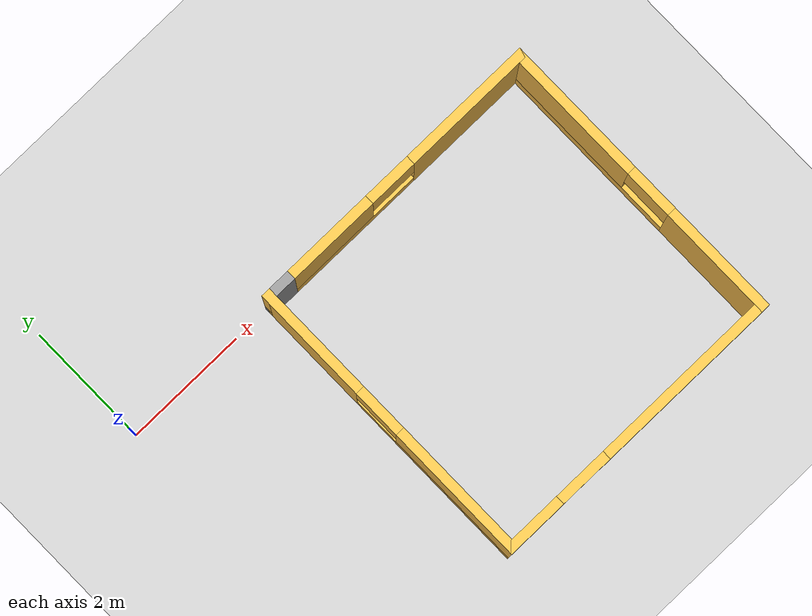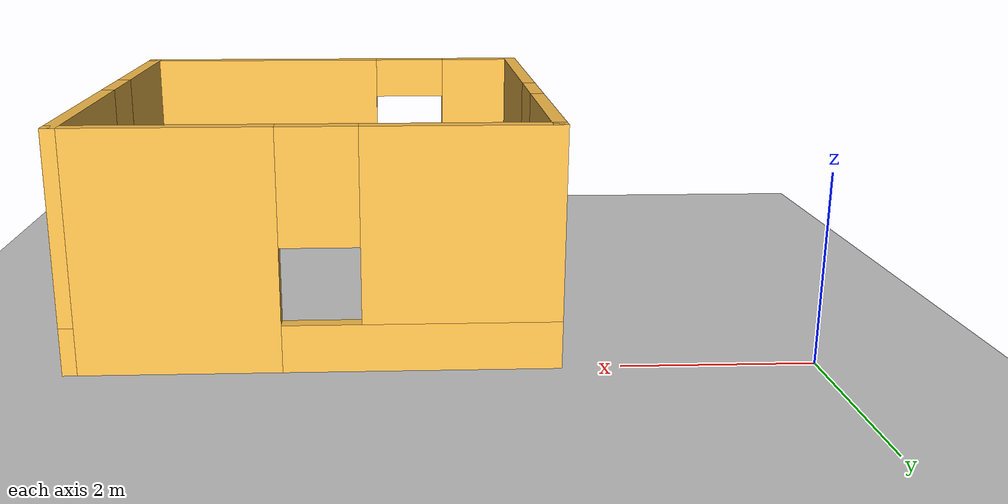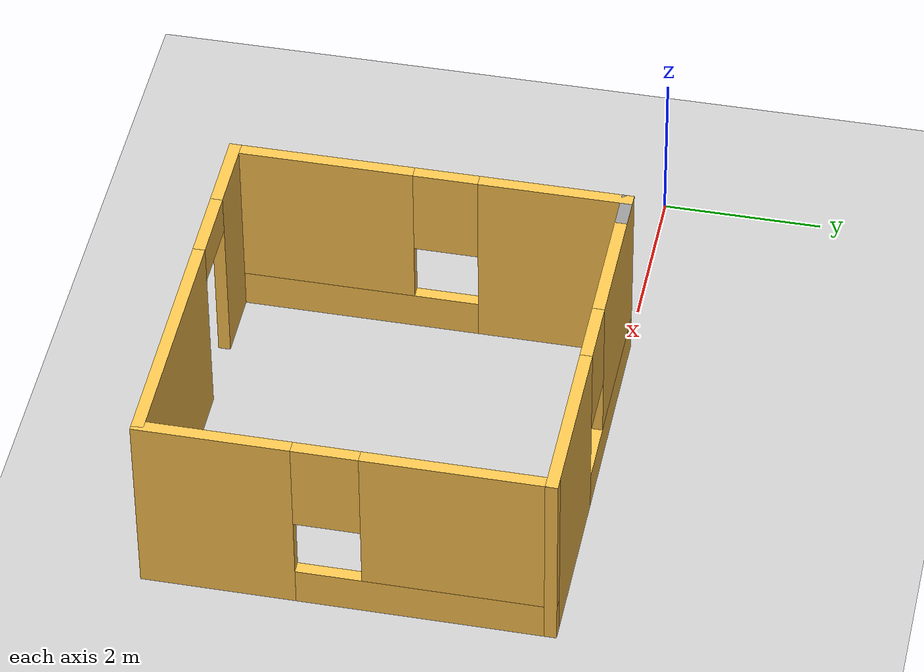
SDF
<sdf version="1.6">
 <world name="default">
  <model name="ground_plane">
   <static>1</static>
   <link name="link">
    <collision name="collision">
     <geometry><plane><normal>0 0 1</normal><size>100 100</size></plane></geometry>
     <surface><friction><ode><mu>100</mu><mu2>50</mu2></ode></friction></surface>
    </collision>
    <visual name="visual">
     <cast_shadows>0</cast_shadows>
     <geometry><plane><normal>0 0 1</normal><size>100 100</size></plane></geometry>
     <material>
      <script><uri>file://media/materials/scripts/gazebo.material</uri><name>Gazebo/Grey</name></script>
     </material>
    </visual>
   </link>
  </model>
  <light name="sun" type="directional">
   <pose>0 0 10 0 -0 0</pose>
   <diffuse>0.8 0.8 0.8 1</diffuse>
   <specular>0.1 0.1 0.1 1</specular>
   <attenuation>
    <range>1000</range>
    <constant>0.9</constant>
    <linear>0.01</linear>
    <quadratic>0.001</quadratic>
   </attenuation>
   <direction>-0.5 0.5 -1</direction>
  </light>
  <gravity>0 0 -9.8</gravity>
  <magnetic_field>6e-06 2.3e-05 -4.2e-05</magnetic_field>
  <atmosphere type="adiabatic"/>
  <physics name="default_physics" default="0" type="ode">
   <max_step_size>0.001</max_step_size>
   <real_time_factor>1</real_time_factor>
   <real_time_update_rate>1000</real_time_update_rate>
  </physics>
  <scene><ambient>0.4 0.4 0.4 1</ambient><background>0.7 0.7 0.7 1</background><shadows>1</shadows></scene>
  <spherical_coordinates>
   <surface_model>EARTH_WGS84</surface_model>
   <latitude_deg>0</latitude_deg>
   <longitude_deg>0</longitude_deg>
   <elevation>0</elevation>
   <heading_deg>0</heading_deg>
  </spherical_coordinates>
  <model name="\room">
   <pose>5.10083 -2.48284 0 0 -0 0</pose>
   <link name="Wall_0">
    <pose>0 2.425 0 0 -0 3.14159</pose>
    <visual name="Wall_0_Visual_0">
     <pose>-1.40606 0 1.25 0 -0 0</pose>
     <geometry><box><size>2.18788 0.15 2.5</size></box></geometry>
     <material>
      <script><uri>file://media/materials/scripts/gazebo.material</uri><name>Gazebo/Grey</name></script>
      <ambient>1 0.764706 0.305882 1</ambient>
     </material>
    </visual>
    <collision name="Wall_0_Collision_0">
     <geometry><box><size>2.18788 0.15 2.5</size></box></geometry>
     <pose>-1.40606 0 1.25 0 -0 0</pose>
    </collision>
    <visual name="Wall_0_Visual_1">
     <pose>1.09394 0 0.25 0 -0 0</pose>
     <geometry><box><size>2.81212 0.15 0.5</size></box></geometry>
     <material>
      <script><uri>file://media/materials/scripts/gazebo.material</uri><name>Gazebo/Grey</name></script>
      <ambient>1 0.764706 0.305882 1</ambient>
     </material>
    </visual>
    <collision name="Wall_0_Collision_1">
     <geometry><box><size>2.81212 0.15 0.5</size></box></geometry>
     <pose>1.09394 0 0.25 0 -0 0</pose>
    </collision>
    <visual name="Wall_0_Visual_2">
     <pose>1.49394 0 1.5 0 -0 0</pose>
     <geometry><box><size>2.01213 0.15 2</size></box></geometry>
     <material>
      <script><uri>file://media/materials/scripts/gazebo.material</uri><name>Gazebo/Grey</name></script>
      <ambient>1 0.764706 0.305882 1</ambient>
     </material>
    </visual>
    <collision name="Wall_0_Collision_2">
     <geometry><box><size>2.01213 0.15 2</size></box></geometry>
     <pose>1.49394 0 1.5 0 -0 0</pose>
    </collision>
    <visual name="Wall_0_Visual_3">
     <pose>0.087875 0 1.9 0 -0 0</pose>
     <geometry><box><size>0.8 0.15 1.2</size></box></geometry>
     <material>
      <script><uri>file://media/materials/scripts/gazebo.material</uri><name>Gazebo/Grey</name></script>
      <ambient>1 0.764706 0.305882 1</ambient>
     </material>
    </visual>
    <collision name="Wall_0_Collision_3">
     <geometry><box><size>0.8 0.15 1.2</size></box></geometry>
     <pose>0.087875 0 1.9 0 -0 0</pose>
    </collision>
   </link>
   <link name="Wall_1">
    <collision name="Wall_1_Collision">
     <geometry><box><size>0.5 0.15 2.5</size></box></geometry>
     <pose>0 0 1.25 0 -0 0</pose>
    </collision>
    <visual name="Wall_1_Visual">
     <pose>0 0 1.25 0 -0 0</pose>
     <geometry><box><size>0.5 0.15 2.5</size></box></geometry>
     <material>
      <script><uri>file://media/materials/scripts/gazebo.material</uri><name>Gazebo/Grey</name></script>
      <ambient>1 1 1 1</ambient>
     </material>
    </visual>
    <pose>-2.25 2.425 0 0 -0 0</pose>
   </link>
   <link name="Wall_3">
    <pose>-2.425 0 0 0 0 -1.5708</pose>
    <visual name="Wall_3_Visual_0">
     <pose>-1.55285 0 1.25 0 -0 0</pose>
     <geometry><box><size>1.8943 0.15 2.5</size></box></geometry>
     <material>
      <script><uri>file://media/materials/scripts/gazebo.material</uri><name>Gazebo/Grey</name></script>
      <ambient>1 0.764706 0.305882 1</ambient>
     </material>
    </visual>
    <collision name="Wall_3_Collision_0">
     <geometry><box><size>1.8943 0.15 2.5</size></box></geometry>
     <pose>-1.55285 0 1.25 0 -0 0</pose>
    </collision>
    <visual name="Wall_3_Visual_1">
     <pose>0.94715 0 0.25 0 -0 0</pose>
     <geometry><box><size>3.1057 0.15 0.5</size></box></geometry>
     <material>
      <script><uri>file://media/materials/scripts/gazebo.material</uri><name>Gazebo/Grey</name></script>
      <ambient>1 0.764706 0.305882 1</ambient>
     </material>
    </visual>
    <collision name="Wall_3_Collision_1">
     <geometry><box><size>3.1057 0.15 0.5</size></box></geometry>
     <pose>0.94715 0 0.25 0 -0 0</pose>
    </collision>
    <visual name="Wall_3_Visual_2">
     <pose>1.34715 0 1.5 0 -0 0</pose>
     <geometry><box><size>2.3057 0.15 2</size></box></geometry>
     <material>
      <script><uri>file://media/materials/scripts/gazebo.material</uri><name>Gazebo/Grey</name></script>
      <ambient>1 0.764706 0.305882 1</ambient>
     </material>
    </visual>
    <collision name="Wall_3_Collision_2">
     <geometry><box><size>2.3057 0.15 2</size></box></geometry>
     <pose>1.34715 0 1.5 0 -0 0</pose>
    </collision>
    <visual name="Wall_3_Visual_3">
     <pose>-0.2057 0 1.9 0 -0 0</pose>
     <geometry><box><size>0.8 0.15 1.2</size></box></geometry>
     <material>
      <script><uri>file://media/materials/scripts/gazebo.material</uri><name>Gazebo/Grey</name></script>
      <ambient>1 0.764706 0.305882 1</ambient>
     </material>
    </visual>
    <collision name="Wall_3_Collision_3">
     <geometry><box><size>0.8 0.15 1.2</size></box></geometry>
     <pose>-0.2057 0 1.9 0 -0 0</pose>
    </collision>
   </link>
   <link name="Wall_4">
    <pose>0 -2.425 0 0 -0 0</pose>
    <visual name="Wall_4_Visual_0">
     <pose>-1.99504 0 1.25 0 -0 0</pose>
     <geometry><box><size>1.00992 0.15 2.5</size></box></geometry>
     <material>
      <script><uri>file://media/materials/scripts/gazebo.material</uri><name>Gazebo/Grey</name></script>
      <ambient>1 0.764706 0.305882 1</ambient>
     </material>
    </visual>
    <collision name="Wall_4_Collision_0">
     <geometry><box><size>1.00992 0.15 2.5</size></box></geometry>
     <pose>-1.99504 0 1.25 0 -0 0</pose>
    </collision>
    <visual name="Wall_4_Visual_1">
     <pose>0.954963 0 1.25 0 -0 0</pose>
     <geometry><box><size>3.09008 0.15 2.5</size></box></geometry>
     <material>
      <script><uri>file://media/materials/scripts/gazebo.material</uri><name>Gazebo/Grey</name></script>
      <ambient>1 0.764706 0.305882 1</ambient>
     </material>
    </visual>
    <collision name="Wall_4_Collision_1">
     <geometry><box><size>3.09008 0.15 2.5</size></box></geometry>
     <pose>0.954963 0 1.25 0 -0 0</pose>
    </collision>
    <visual name="Wall_4_Visual_2">
     <pose>-1.04008 0 2.25 0 -0 0</pose>
     <geometry><box><size>0.9 0.15 0.5</size></box></geometry>
     <material>
      <script><uri>file://media/materials/scripts/gazebo.material</uri><name>Gazebo/Grey</name></script>
      <ambient>1 0.764706 0.305882 1</ambient>
     </material>
    </visual>
    <collision name="Wall_4_Collision_2">
     <geometry><box><size>0.9 0.15 0.5</size></box></geometry>
     <pose>-1.04008 0 2.25 0 -0 0</pose>
    </collision>
   </link>
   <link name="Wall_5">
    <pose>2.425 0 0 0 -0 1.5708</pose>
    <visual name="Wall_5_Visual_0">
     <pose>-1.55875 0 1.25 0 -0 0</pose>
     <geometry><box><size>1.8825 0.15 2.5</size></box></geometry>
     <material>
      <script><uri>file://media/materials/scripts/gazebo.material</uri><name>Gazebo/Grey</name></script>
      <ambient>1 0.764706 0.305882 1</ambient>
     </material>
    </visual>
    <collision name="Wall_5_Collision_0">
     <geometry><box><size>1.8825 0.15 2.5</size></box></geometry>
     <pose>-1.55875 0 1.25 0 -0 0</pose>
    </collision>
    <visual name="Wall_5_Visual_1">
     <pose>0.94125 0 0.25 0 -0 0</pose>
     <geometry><box><size>3.1175 0.15 0.5</size></box></geometry>
     <material>
      <script><uri>file://media/materials/scripts/gazebo.material</uri><name>Gazebo/Grey</name></script>
      <ambient>1 0.764706 0.305882 1</ambient>
     </material>
    </visual>
    <collision name="Wall_5_Collision_1">
     <geometry><box><size>3.1175 0.15 0.5</size></box></geometry>
     <pose>0.94125 0 0.25 0 -0 0</pose>
    </collision>
    <visual name="Wall_5_Visual_2">
     <pose>1.34125 0 1.5 0 -0 0</pose>
     <geometry><box><size>2.3175 0.15 2</size></box></geometry>
     <material>
      <script><uri>file://media/materials/scripts/gazebo.material</uri><name>Gazebo/Grey</name></script>
      <ambient>1 0.764706 0.305882 1</ambient>
     </material>
    </visual>
    <collision name="Wall_5_Collision_2">
     <geometry><box><size>2.3175 0.15 2</size></box></geometry>
     <pose>1.34125 0 1.5 0 -0 0</pose>
    </collision>
    <visual name="Wall_5_Visual_3">
     <pose>-0.2175 0 1.9 0 -0 0</pose>
     <geometry><box><size>0.8 0.15 1.2</size></box></geometry>
     <material>
      <script><uri>file://media/materials/scripts/gazebo.material</uri><name>Gazebo/Grey</name></script>
      <ambient>1 0.764706 0.305882 1</ambient>
     </material>
    </visual>
    <collision name="Wall_5_Collision_3">
     <geometry><box><size>0.8 0.15 1.2</size></box></geometry>
     <pose>-0.2175 0 1.9 0 -0 0</pose>
    </collision>
   </link>
   <static>1</static>
  </model>
 </world>
</sdf>
